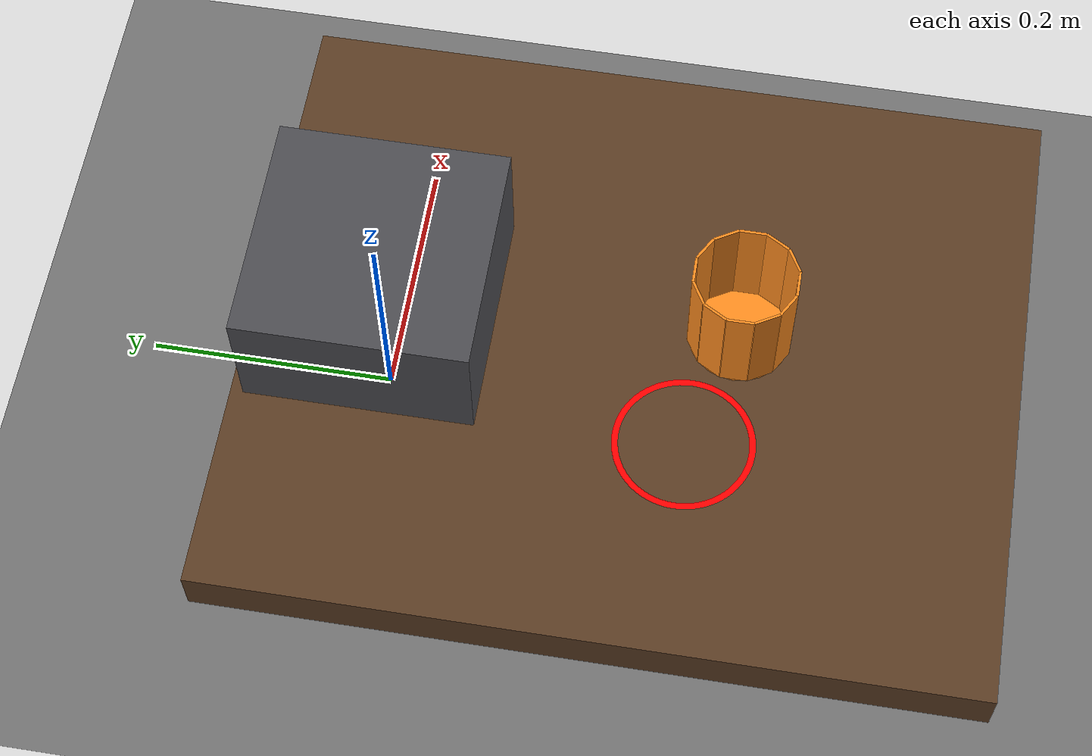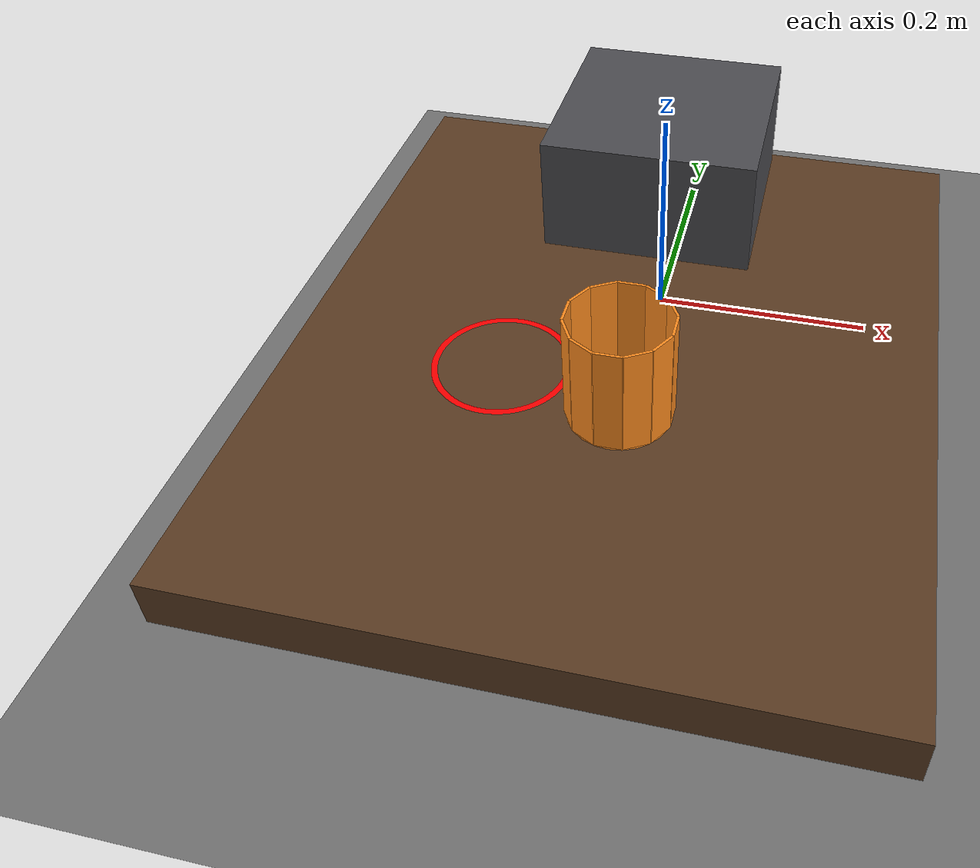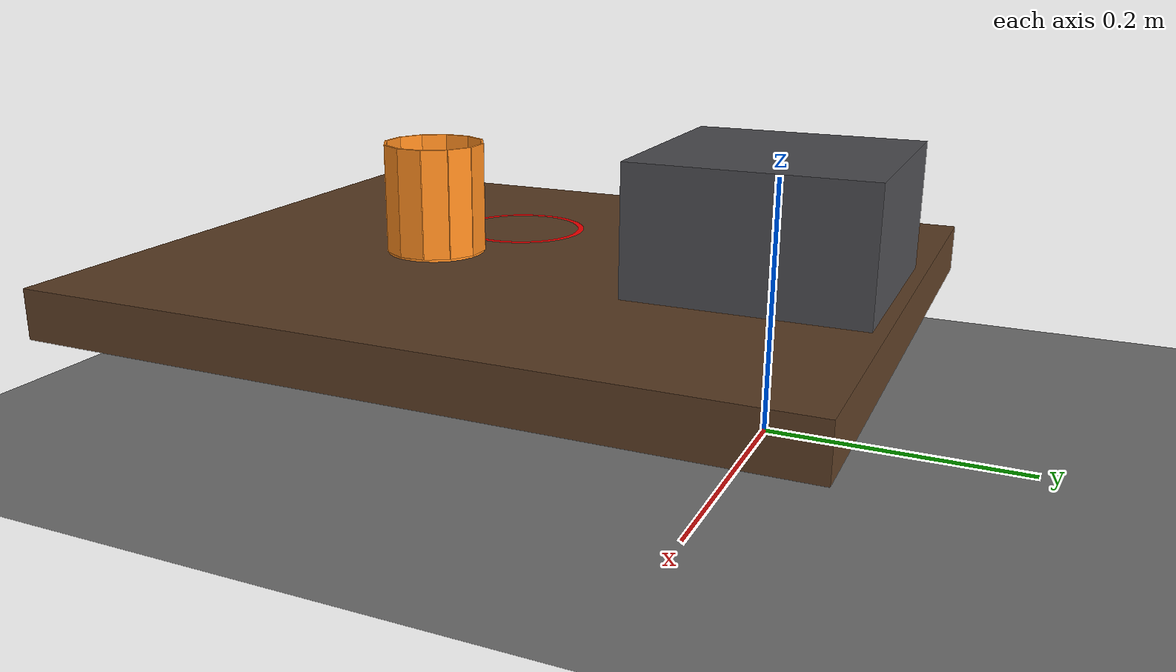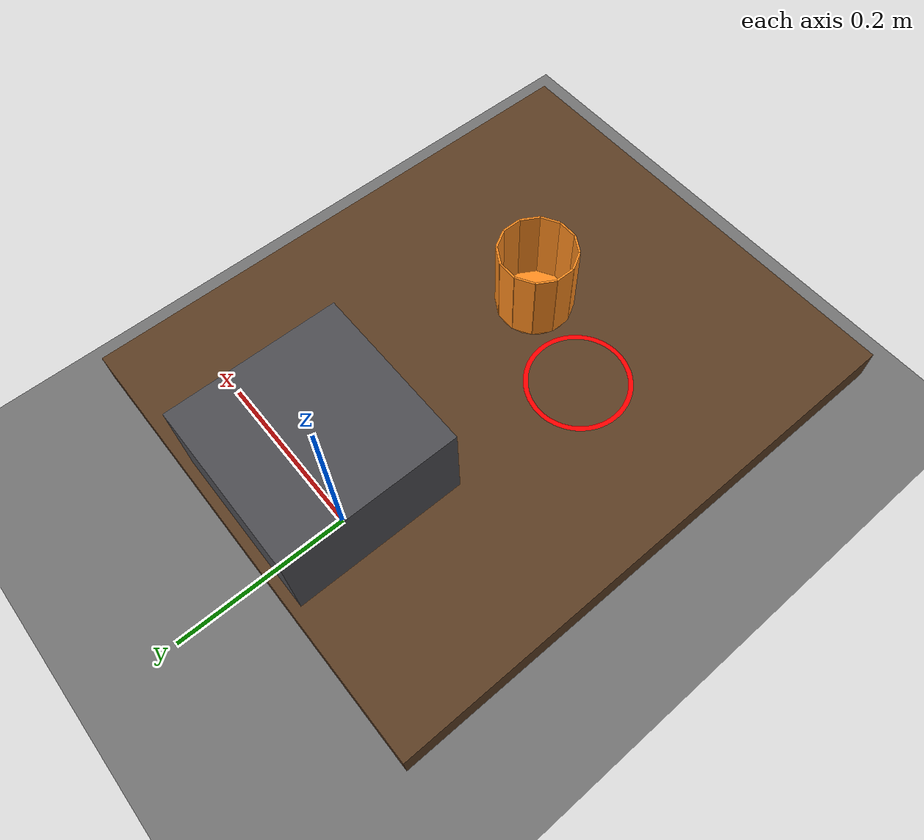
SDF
<?xml version="1.0"?>
<sdf version="1.10">
  <world name="so101_pick_place">
    <physics name="1ms" type="ignored">
      <max_step_size>0.001</max_step_size>
      <real_time_factor>1.0</real_time_factor>
    </physics>

    <plugin filename="gz-sim-physics-system"
            name="gz::sim::systems::Physics"/>
    <plugin filename="gz-sim-user-commands-system"
            name="gz::sim::systems::UserCommands"/>
    <plugin filename="gz-sim-scene-broadcaster-system"
            name="gz::sim::systems::SceneBroadcaster"/>
    <plugin filename="gz-sim-contact-system"
            name="gz::sim::systems::Contact"/>
    <gui fullscreen="0">
      <plugin filename="MinimalScene" name="3D View">
        <gz-gui>
          <title>3D View</title>
          <property type="bool" key="showTitleBar">false</property>
          <property type="string" key="state">docked</property>
        </gz-gui>
        <engine>ogre2</engine>
        <scene>scene</scene>
        <ambient_light>0.4 0.4 0.4</ambient_light>
        <background_color>0.8 0.8 0.8</background_color>
        <camera_pose>0.4281 0.2175 0.4608 0 0.4 -2.3</camera_pose>
      </plugin>

      <plugin filename="GzSceneManager" name="Scene Manager">
        <gz-gui>
          <property type="bool" key="resizable">false</property>
          <property type="double" key="width">5</property>
          <property type="double" key="height">5</property>
          <property type="string" key="state">floating</property>
          <property type="bool" key="showTitleBar">false</property>
        </gz-gui>
      </plugin>
      <plugin filename="InteractiveViewControl" name="Interactive view control">
        <gz-gui>
          <property type="bool" key="resizable">false</property>
          <property type="double" key="width">5</property>
          <property type="double" key="height">5</property>
          <property type="string" key="state">floating</property>
          <property type="bool" key="showTitleBar">false</property>
        </gz-gui>
      </plugin>
      <plugin filename="CameraTracking" name="Camera Tracking">
        <gz-gui>
          <property type="bool" key="resizable">false</property>
          <property type="double" key="width">5</property>
          <property type="double" key="height">5</property>
          <property type="string" key="state">floating</property>
          <property type="bool" key="showTitleBar">false</property>
        </gz-gui>
      </plugin>
      <plugin filename="SelectEntities" name="Select Entities">
        <gz-gui>
          <property type="bool" key="resizable">false</property>
          <property type="double" key="width">5</property>
          <property type="double" key="height">5</property>
          <property type="string" key="state">floating</property>
          <property type="bool" key="showTitleBar">false</property>
        </gz-gui>
      </plugin>

      <plugin filename="WorldControl" name="World control">
        <gz-gui>
          <property type="bool" key="showTitleBar">false</property>
          <property type="bool" key="resizable">false</property>
          <property type="double" key="height">72</property>
          <property type="double" key="z">1</property>
          <property type="string" key="state">floating</property>
          <anchors target="3D View">
            <line own="left" target="left"/>
            <line own="bottom" target="bottom"/>
          </anchors>
        </gz-gui>
        <play_pause>true</play_pause>
        <step>true</step>
        <start_paused>false</start_paused>
        <use_event>true</use_event>
      </plugin>

      <plugin filename="WorldStats" name="World stats">
        <gz-gui>
          <property type="bool" key="showTitleBar">false</property>
          <property type="bool" key="resizable">false</property>
          <property type="double" key="height">110</property>
          <property type="double" key="width">290</property>
          <property type="double" key="z">1</property>
          <property type="string" key="state">floating</property>
          <anchors target="3D View">
            <line own="right" target="right"/>
            <line own="bottom" target="bottom"/>
          </anchors>
        </gz-gui>
        <sim_time>true</sim_time>
        <real_time>true</real_time>
        <real_time_factor>true</real_time_factor>
        <iterations>true</iterations>
      </plugin>

      <plugin filename="EntityTree" name="Entity tree">
        <gz-gui>
          <property type="bool" key="showTitleBar">false</property>
          <property type="string" key="state">docked_collapsed</property>
        </gz-gui>
      </plugin>
      <plugin filename="ViewAngle" name="View angle">
        <gz-gui>
          <property type="string" key="state">docked_collapsed</property>
        </gz-gui>
      </plugin>
      <plugin filename="Screenshot" name="Screenshot">
        <gz-gui>
          <property key="resizable" type="bool">false</property>
          <property key="width" type="double">50</property>
          <property key="height" type="double">50</property>
          <property key="state" type="string">floating</property>
          <property key="showTitleBar" type="bool">false</property>
        </gz-gui>
      </plugin>
    </gui>

    <light type="directional" name="sun">
      <cast_shadows>true</cast_shadows>
      <pose>0 0 10 0 0 0</pose>
      <diffuse>1 1 1 1</diffuse>
      <specular>0.5 0.5 0.5 1</specular>
      <attenuation>
        <range>1000</range>
        <constant>0.9</constant>
        <linear>0.01</linear>
        <quadratic>0.001</quadratic>
      </attenuation>
      <direction>-0.5 0.1 -0.9</direction>
    </light>

    <model name="ground_plane">
      <static>true</static>
      <link name="ground_link">
        <collision name="collision">
          <geometry>
            <plane>
              <normal>0 0 1</normal>
              <size>10 10</size>
            </plane>
          </geometry>
        </collision>
        <visual name="visual">
          <geometry>
            <plane>
              <normal>0 0 1</normal>
              <size>10 10</size>
            </plane>
          </geometry>
          <material>
            <ambient>0.35 0.35 0.35 1</ambient>
            <diffuse>0.45 0.45 0.45 1</diffuse>
          </material>
        </visual>
      </link>
    </model>

    <model name="pedestal">
      <static>true</static>
      <pose>0 0 0.17 0 0 0</pose>
      <link name="pedestal_link">
        <collision name="collision">
          <geometry>
            <box><size>0.18 0.18 0.10</size></box>
          </geometry>
        </collision>
        <visual name="visual">
          <geometry>
            <box><size>0.18 0.18 0.10</size></box>
          </geometry>
          <material>
            <ambient>0.20 0.20 0.22 1</ambient>
            <diffuse>0.30 0.30 0.32 1</diffuse>
          </material>
        </visual>
      </link>
    </model>

    <model name="table">
      <static>true</static>
      <pose>0 -0.20 0.10 0 0 0</pose>
      <link name="table_top">
        <collision name="collision">
          <geometry>
            <box><size>0.50 0.60 0.04</size></box>
          </geometry>
        </collision>
        <visual name="visual">
          <geometry>
            <box><size>0.50 0.60 0.04</size></box>
          </geometry>
          <material>
            <ambient>0.18 0.12 0.07 1</ambient>
            <diffuse>0.36 0.24 0.14 1</diffuse>
          </material>
        </visual>
        <visual name="target_landing_tolerance_ring">
          <pose>-0.080 -0.050 0.0201 0 0 0</pose>
          <cast_shadows>false</cast_shadows>
          <geometry>
            <mesh>
              <uri>model://so101_demo_py/assets/common/task_objects/target_landing_tolerance_ring.stl</uri>
            </mesh>
          </geometry>
          <material>
            <ambient>1 0 0 1</ambient>
            <diffuse>1 0 0 1</diffuse>
            <specular>0 0 0 1</specular>
          </material>
        </visual>
      </link>
    </model>

    <model name="plastic_cup">
      <pose>0.02 -0.28 0.165 0 0 0</pose>
      <link name="body">
        <inertial>
          <mass>0.020</mass>
          <inertia>
            <ixx>0.0000295</ixx>
            <iyy>0.0000295</iyy>
            <izz>0.0000320</izz>
          </inertia>
        </inertial>
        <collision name="wall_near"><pose>0 0.039 0.001 0 0 0</pose><geometry><box><size>0.020705524 0.002 0.088</size></box></geometry><surface><friction><ode><mu>1.2</mu><mu2>1.2</mu2></ode><bullet><friction>1.2</friction><friction2>1.2</friction2></bullet></friction><contact><ode><kp>1000000.0</kp><kd>100.0</kd><max_vel>0.01</max_vel><min_depth>0.0001</min_depth></ode></contact></surface></collision>
        <collision name="wall_01"><pose>0.0195 0.033775 0.001 0 0 -0.523598776</pose><geometry><box><size>0.020705524 0.002 0.088</size></box></geometry><surface><friction><ode><mu>1.2</mu><mu2>1.2</mu2></ode><bullet><friction>1.2</friction><friction2>1.2</friction2></bullet></friction><contact><ode><kp>1000000.0</kp><kd>100.0</kd><max_vel>0.01</max_vel><min_depth>0.0001</min_depth></ode></contact></surface></collision>
        <collision name="wall_02"><pose>0.033775 0.0195 0.001 0 0 -1.047197551</pose><geometry><box><size>0.020705524 0.002 0.088</size></box></geometry><surface><friction><ode><mu>1.2</mu><mu2>1.2</mu2></ode><bullet><friction>1.2</friction><friction2>1.2</friction2></bullet></friction><contact><ode><kp>1000000.0</kp><kd>100.0</kd><max_vel>0.01</max_vel><min_depth>0.0001</min_depth></ode></contact></surface></collision>
        <collision name="wall_03"><pose>0.039 0 0.001 0 0 -1.570796327</pose><geometry><box><size>0.020705524 0.002 0.088</size></box></geometry><surface><friction><ode><mu>1.2</mu><mu2>1.2</mu2></ode><bullet><friction>1.2</friction><friction2>1.2</friction2></bullet></friction><contact><ode><kp>1000000.0</kp><kd>100.0</kd><max_vel>0.01</max_vel><min_depth>0.0001</min_depth></ode></contact></surface></collision>
        <collision name="wall_04"><pose>0.033775 -0.0195 0.001 0 0 -2.094395102</pose><geometry><box><size>0.020705524 0.002 0.088</size></box></geometry><surface><friction><ode><mu>1.2</mu><mu2>1.2</mu2></ode><bullet><friction>1.2</friction><friction2>1.2</friction2></bullet></friction><contact><ode><kp>1000000.0</kp><kd>100.0</kd><max_vel>0.01</max_vel><min_depth>0.0001</min_depth></ode></contact></surface></collision>
        <collision name="wall_05"><pose>0.0195 -0.033775 0.001 0 0 -2.617993878</pose><geometry><box><size>0.020705524 0.002 0.088</size></box></geometry><surface><friction><ode><mu>1.2</mu><mu2>1.2</mu2></ode><bullet><friction>1.2</friction><friction2>1.2</friction2></bullet></friction><contact><ode><kp>1000000.0</kp><kd>100.0</kd><max_vel>0.01</max_vel><min_depth>0.0001</min_depth></ode></contact></surface></collision>
        <collision name="wall_opposite"><pose>0 -0.039 0.001 0 0 3.141592654</pose><geometry><box><size>0.020705524 0.002 0.088</size></box></geometry><surface><friction><ode><mu>1.2</mu><mu2>1.2</mu2></ode><bullet><friction>1.2</friction><friction2>1.2</friction2></bullet></friction><contact><ode><kp>1000000.0</kp><kd>100.0</kd><max_vel>0.01</max_vel><min_depth>0.0001</min_depth></ode></contact></surface></collision>
        <collision name="wall_07"><pose>-0.0195 -0.033775 0.001 0 0 2.617993878</pose><geometry><box><size>0.020705524 0.002 0.088</size></box></geometry><surface><friction><ode><mu>1.2</mu><mu2>1.2</mu2></ode><bullet><friction>1.2</friction><friction2>1.2</friction2></bullet></friction><contact><ode><kp>1000000.0</kp><kd>100.0</kd><max_vel>0.01</max_vel><min_depth>0.0001</min_depth></ode></contact></surface></collision>
        <collision name="wall_08"><pose>-0.033775 -0.0195 0.001 0 0 2.094395102</pose><geometry><box><size>0.020705524 0.002 0.088</size></box></geometry><surface><friction><ode><mu>1.2</mu><mu2>1.2</mu2></ode><bullet><friction>1.2</friction><friction2>1.2</friction2></bullet></friction><contact><ode><kp>1000000.0</kp><kd>100.0</kd><max_vel>0.01</max_vel><min_depth>0.0001</min_depth></ode></contact></surface></collision>
        <collision name="wall_09"><pose>-0.039 0 0.001 0 0 1.570796327</pose><geometry><box><size>0.020705524 0.002 0.088</size></box></geometry><surface><friction><ode><mu>1.2</mu><mu2>1.2</mu2></ode><bullet><friction>1.2</friction><friction2>1.2</friction2></bullet></friction><contact><ode><kp>1000000.0</kp><kd>100.0</kd><max_vel>0.01</max_vel><min_depth>0.0001</min_depth></ode></contact></surface></collision>
        <collision name="wall_10"><pose>-0.033775 0.0195 0.001 0 0 1.047197551</pose><geometry><box><size>0.020705524 0.002 0.088</size></box></geometry><surface><friction><ode><mu>1.2</mu><mu2>1.2</mu2></ode><bullet><friction>1.2</friction><friction2>1.2</friction2></bullet></friction><contact><ode><kp>1000000.0</kp><kd>100.0</kd><max_vel>0.01</max_vel><min_depth>0.0001</min_depth></ode></contact></surface></collision>
        <collision name="wall_11"><pose>-0.0195 0.033775 0.001 0 0 0.523598776</pose><geometry><box><size>0.020705524 0.002 0.088</size></box></geometry><surface><friction><ode><mu>1.2</mu><mu2>1.2</mu2></ode><bullet><friction>1.2</friction><friction2>1.2</friction2></bullet></friction><contact><ode><kp>1000000.0</kp><kd>100.0</kd><max_vel>0.01</max_vel><min_depth>0.0001</min_depth></ode></contact></surface></collision>
        <collision name="bottom"><pose>0 0 -0.044 0 0 0</pose><geometry><cylinder><radius>0.040</radius><length>0.002</length></cylinder></geometry></collision>

        <sensor name="task_object_contact_wall_near" type="contact"><always_on>true</always_on><update_rate>200</update_rate><contact><collision>wall_near</collision></contact></sensor>
        <sensor name="task_object_contact_wall_01" type="contact"><always_on>true</always_on><update_rate>200</update_rate><contact><collision>wall_01</collision></contact></sensor>
        <sensor name="task_object_contact_wall_02" type="contact"><always_on>true</always_on><update_rate>200</update_rate><contact><collision>wall_02</collision></contact></sensor>
        <sensor name="task_object_contact_wall_03" type="contact"><always_on>true</always_on><update_rate>200</update_rate><contact><collision>wall_03</collision></contact></sensor>
        <sensor name="task_object_contact_wall_04" type="contact"><always_on>true</always_on><update_rate>200</update_rate><contact><collision>wall_04</collision></contact></sensor>
        <sensor name="task_object_contact_wall_05" type="contact"><always_on>true</always_on><update_rate>200</update_rate><contact><collision>wall_05</collision></contact></sensor>
        <sensor name="task_object_contact_wall_opposite" type="contact"><always_on>true</always_on><update_rate>200</update_rate><contact><collision>wall_opposite</collision></contact></sensor>
        <sensor name="task_object_contact_wall_07" type="contact"><always_on>true</always_on><update_rate>200</update_rate><contact><collision>wall_07</collision></contact></sensor>
        <sensor name="task_object_contact_wall_08" type="contact"><always_on>true</always_on><update_rate>200</update_rate><contact><collision>wall_08</collision></contact></sensor>
        <sensor name="task_object_contact_wall_09" type="contact"><always_on>true</always_on><update_rate>200</update_rate><contact><collision>wall_09</collision></contact></sensor>
        <sensor name="task_object_contact_wall_10" type="contact"><always_on>true</always_on><update_rate>200</update_rate><contact><collision>wall_10</collision></contact></sensor>
        <sensor name="task_object_contact_wall_11" type="contact"><always_on>true</always_on><update_rate>200</update_rate><contact><collision>wall_11</collision></contact></sensor>
        <sensor name="task_object_contact_bottom" type="contact"><always_on>true</always_on><update_rate>200</update_rate><contact><collision>bottom</collision></contact></sensor>

        <visual name="wall_near"><pose>0 0.039 0.001 0 0 0</pose><geometry><box><size>0.020705524 0.002 0.088</size></box></geometry><material><ambient>0.75 0.30 0.05 1</ambient><diffuse>1.0 0.55 0.12 1</diffuse><specular>0.20 0.20 0.20 1</specular></material></visual>
        <visual name="wall_01"><pose>0.0195 0.033775 0.001 0 0 -0.523598776</pose><geometry><box><size>0.020705524 0.002 0.088</size></box></geometry><material><ambient>0.75 0.30 0.05 1</ambient><diffuse>1.0 0.55 0.12 1</diffuse><specular>0.20 0.20 0.20 1</specular></material></visual>
        <visual name="wall_02"><pose>0.033775 0.0195 0.001 0 0 -1.047197551</pose><geometry><box><size>0.020705524 0.002 0.088</size></box></geometry><material><ambient>0.75 0.30 0.05 1</ambient><diffuse>1.0 0.55 0.12 1</diffuse><specular>0.20 0.20 0.20 1</specular></material></visual>
        <visual name="wall_03"><pose>0.039 0 0.001 0 0 -1.570796327</pose><geometry><box><size>0.020705524 0.002 0.088</size></box></geometry><material><ambient>0.75 0.30 0.05 1</ambient><diffuse>1.0 0.55 0.12 1</diffuse><specular>0.20 0.20 0.20 1</specular></material></visual>
        <visual name="wall_04"><pose>0.033775 -0.0195 0.001 0 0 -2.094395102</pose><geometry><box><size>0.020705524 0.002 0.088</size></box></geometry><material><ambient>0.75 0.30 0.05 1</ambient><diffuse>1.0 0.55 0.12 1</diffuse><specular>0.20 0.20 0.20 1</specular></material></visual>
        <visual name="wall_05"><pose>0.0195 -0.033775 0.001 0 0 -2.617993878</pose><geometry><box><size>0.020705524 0.002 0.088</size></box></geometry><material><ambient>0.75 0.30 0.05 1</ambient><diffuse>1.0 0.55 0.12 1</diffuse><specular>0.20 0.20 0.20 1</specular></material></visual>
        <visual name="wall_opposite"><pose>0 -0.039 0.001 0 0 3.141592654</pose><geometry><box><size>0.020705524 0.002 0.088</size></box></geometry><material><ambient>0.75 0.30 0.05 1</ambient><diffuse>1.0 0.55 0.12 1</diffuse><specular>0.20 0.20 0.20 1</specular></material></visual>
        <visual name="wall_07"><pose>-0.0195 -0.033775 0.001 0 0 2.617993878</pose><geometry><box><size>0.020705524 0.002 0.088</size></box></geometry><material><ambient>0.75 0.30 0.05 1</ambient><diffuse>1.0 0.55 0.12 1</diffuse><specular>0.20 0.20 0.20 1</specular></material></visual>
        <visual name="wall_08"><pose>-0.033775 -0.0195 0.001 0 0 2.094395102</pose><geometry><box><size>0.020705524 0.002 0.088</size></box></geometry><material><ambient>0.75 0.30 0.05 1</ambient><diffuse>1.0 0.55 0.12 1</diffuse><specular>0.20 0.20 0.20 1</specular></material></visual>
        <visual name="wall_09"><pose>-0.039 0 0.001 0 0 1.570796327</pose><geometry><box><size>0.020705524 0.002 0.088</size></box></geometry><material><ambient>0.75 0.30 0.05 1</ambient><diffuse>1.0 0.55 0.12 1</diffuse><specular>0.20 0.20 0.20 1</specular></material></visual>
        <visual name="wall_10"><pose>-0.033775 0.0195 0.001 0 0 1.047197551</pose><geometry><box><size>0.020705524 0.002 0.088</size></box></geometry><material><ambient>0.75 0.30 0.05 1</ambient><diffuse>1.0 0.55 0.12 1</diffuse><specular>0.20 0.20 0.20 1</specular></material></visual>
        <visual name="wall_11"><pose>-0.0195 0.033775 0.001 0 0 0.523598776</pose><geometry><box><size>0.020705524 0.002 0.088</size></box></geometry><material><ambient>0.75 0.30 0.05 1</ambient><diffuse>1.0 0.55 0.12 1</diffuse><specular>0.20 0.20 0.20 1</specular></material></visual>
        <visual name="bottom"><pose>0 0 -0.044 0 0 0</pose><geometry><cylinder><radius>0.040</radius><length>0.002</length></cylinder></geometry><material><ambient>0.75 0.30 0.05 1</ambient><diffuse>1.0 0.55 0.12 1</diffuse><specular>0.20 0.20 0.20 1</specular></material></visual>
      </link>
    </model>
  </world>
</sdf>
